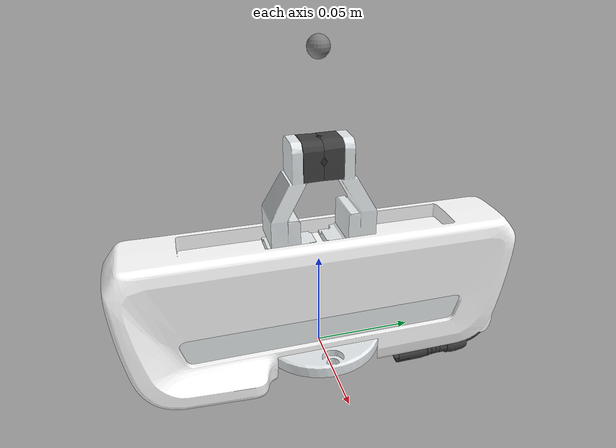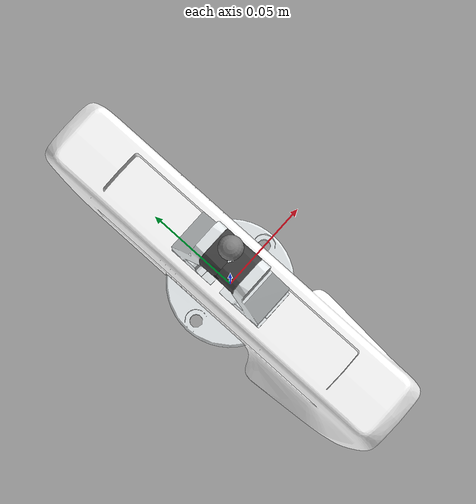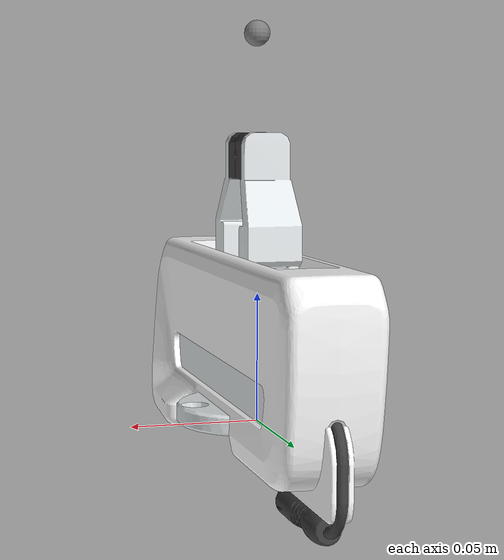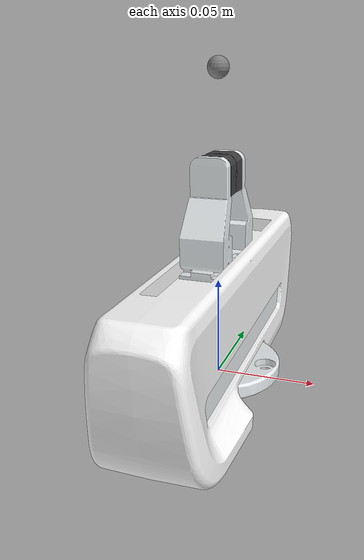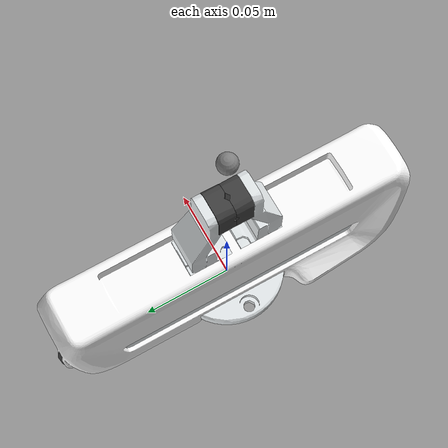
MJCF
<mujoco model="panda hand">
  <compiler angle="radian" meshdir="assets" autolimits="true"/>

  <option integrator="implicitfast"/>

  <default>
    <default class="panda">
      <material specular="0.5" shininess="0.25" />
      <joint armature="0.1" damping="1" axis="0 0 1" range="-2.8973 2.8973" />
      <general dyntype="none" biastype="affine" ctrlrange="-2.8973 2.8973" forcerange="-87 87" />
      <default class="finger">
        <joint axis="0 1 0" type="slide" range="0 0.04" />
      </default>

      <default class="visual">
        <geom type="mesh" contype="0" conaffinity="0" group="2" />
      </default>
      <default class="collision">
        <geom type="mesh" group="3" />
        <default class="fingertip_pad_collision_1">
          <geom type="box" size="0.0085 0.004 0.0085" pos="0 0.0055 0.0445" />
        </default>
        <default class="fingertip_pad_collision_2">
          <geom type="box" size="0.003 0.002 0.003" pos="0.0055 0.002 0.05" />
        </default>
        <default class="fingertip_pad_collision_3">
          <geom type="box" size="0.003 0.002 0.003" pos="-0.0055 0.002 0.05" />
        </default>
        <default class="fingertip_pad_collision_4">
          <geom type="box" size="0.003 0.002 0.0035" pos="0.0055 0.002 0.0395" />
        </default>
        <default class="fingertip_pad_collision_5">
          <geom type="box" size="0.003 0.002 0.0035" pos="-0.0055 0.002 0.0395" />
        </default>
      </default>
    </default>
  </default>

  <asset>
    <material class="panda" name="white" rgba="1 1 1 1"/>
    <material class="panda" name="off_white" rgba="0.901961 0.921569 0.929412 1"/>
    <material class="panda" name="black" rgba="0.25 0.25 0.25 1"/>

    <!-- Collision meshes -->
    <mesh name="hand_c" file="hand.stl"/>

    <!-- Visual meshes -->
    <mesh file="hand_0.obj"/>
    <mesh file="hand_1.obj"/>
    <mesh file="hand_2.obj"/>
    <mesh file="hand_3.obj"/>
    <mesh file="hand_4.obj"/>
    <mesh file="finger_0.obj"/>
    <mesh file="finger_1.obj"/>
  </asset>

  <worldbody>
    <body name="hand" childclass="panda" quat="0 0 0 1">
      <inertial mass="0.73" pos="-0.01 0 0.03" diaginertia="0.001 0.0025 0.0017"/>
      <geom mesh="hand_0" material="off_white" class="visual"/>
      <geom mesh="hand_1" material="black" class="visual"/>
      <geom mesh="hand_2" material="black" class="visual"/>
      <geom mesh="hand_3" material="white" class="visual"/>
      <geom mesh="hand_4" material="off_white" class="visual"/>
      <geom mesh="hand_c" class="collision"/>
      <body name="left_finger" pos="0 0 0.0584">
        <inertial mass="0.015" pos="0 0 0" diaginertia="2.375e-6 2.375e-6 7.5e-7" />
        <joint name="finger_joint1" class="finger" />
        <geom mesh="finger_0" material="off_white" class="visual" />
        <geom mesh="finger_1" material="black" class="visual" />
        <geom mesh="finger_0" class="collision" />
        <geom name="finger1_fingertip_pad_collision_1" class="fingertip_pad_collision_1" />
        <geom name="finger1_fingertip_pad_collision_2" class="fingertip_pad_collision_2" />
        <geom name="finger1_fingertip_pad_collision_3" class="fingertip_pad_collision_3" />
        <geom name="finger1_fingertip_pad_collision_4" class="fingertip_pad_collision_4" />
        <geom name="finger1_fingertip_pad_collision_5" class="fingertip_pad_collision_5" />
      </body>
      <site name="tcp" pos="0 0 0.15" axisangle="0 0 1 1.57"/>
      <body name="right_finger" pos="0 0 0.0584" quat="0 0 0 1">
        <inertial mass="0.015" pos="0 0 0" diaginertia="2.375e-6 2.375e-6 7.5e-7"/>
        <joint name="finger_joint2" class="finger"/>
        <geom mesh="finger_0" material="off_white" class="visual"/>
        <geom mesh="finger_1" material="black" class="visual"/>
        <geom mesh="finger_0" class="collision"/>
        <geom name="finger2_fingertip_pad_collision_1" class="fingertip_pad_collision_1"/>
        <geom name="finger2_fingertip_pad_collision_2" class="fingertip_pad_collision_2"/>
        <geom name="finger2_fingertip_pad_collision_3" class="fingertip_pad_collision_3"/>
        <geom name="finger2_fingertip_pad_collision_4" class="fingertip_pad_collision_4"/>
        <geom name="finger2_fingertip_pad_collision_5" class="fingertip_pad_collision_5"/>
      </body>
    </body>
  </worldbody>

  <contact>
    <exclude body1="hand" body2="left_finger"/>
    <exclude body1="hand" body2="right_finger"/>
  </contact>

  <tendon>
    <fixed name="split">
      <joint joint="finger_joint1" coef="0.5"/>
      <joint joint="finger_joint2" coef="0.5"/>
    </fixed>
  </tendon>

  <equality>
    <joint joint1="finger_joint1" joint2="finger_joint2" solimp="0.95 0.99 0.001" solref="0.005 1"/>
  </equality>

  <actuator>
    <!-- Remap original ctrlrange (0, 0.04) to (0, 255): 0.04 * 100 / 255 = 0.01568627451 -->
    <position kp="10000" kv="1000" class="panda" name="actuator8" tendon="split" forcerange="-1000 1000" ctrlrange="0 255"
      />
  </actuator>
</mujoco>
